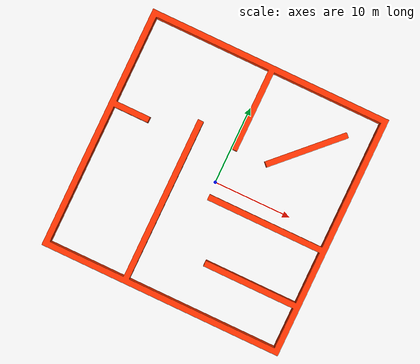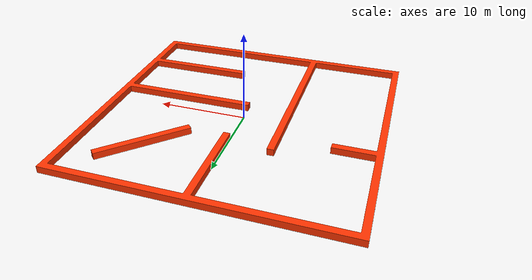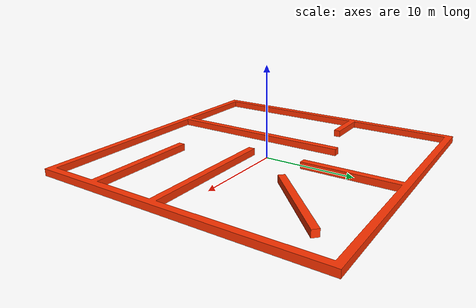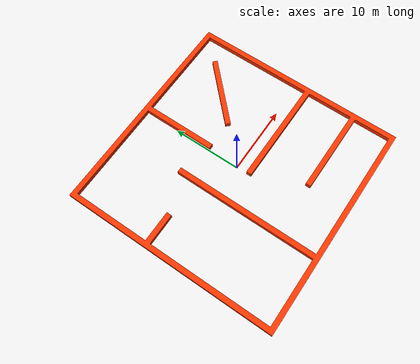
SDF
<?xml version="1.0"?>
<sdf version="1.6">
  <model name="Gazebo_Maze">
    <static>true</static>

    <link name="link">

      <visual name="visual">
      <material>
      <emissive>1 0.2 0 1</emissive>
      <diffuse>1 0.2 0 1</diffuse>
      </material>
        <geometry>
          <mesh>
            <uri>file://home/arz-1013/tbot_ws/src/tortoisebot_gazebo/models/Gazebo_Maze/meshes/Gazebo_Wall_world.stl</uri>
            <scale>3 3 0.250</scale>
          </mesh>
        </geometry>
      </visual>

      <collision name="collision">
        <geometry>
          <mesh>
            <uri>file://home/arz-1013/tbot_ws/src/tortoisebot_gazebo/models/Gazebo_Maze/meshes/Gazebo_Wall_world.stl</uri>
            <scale>3 3 0.25</scale>
          </mesh>
        </geometry>
      </collision>

    </link>
  </model>
</sdf>
